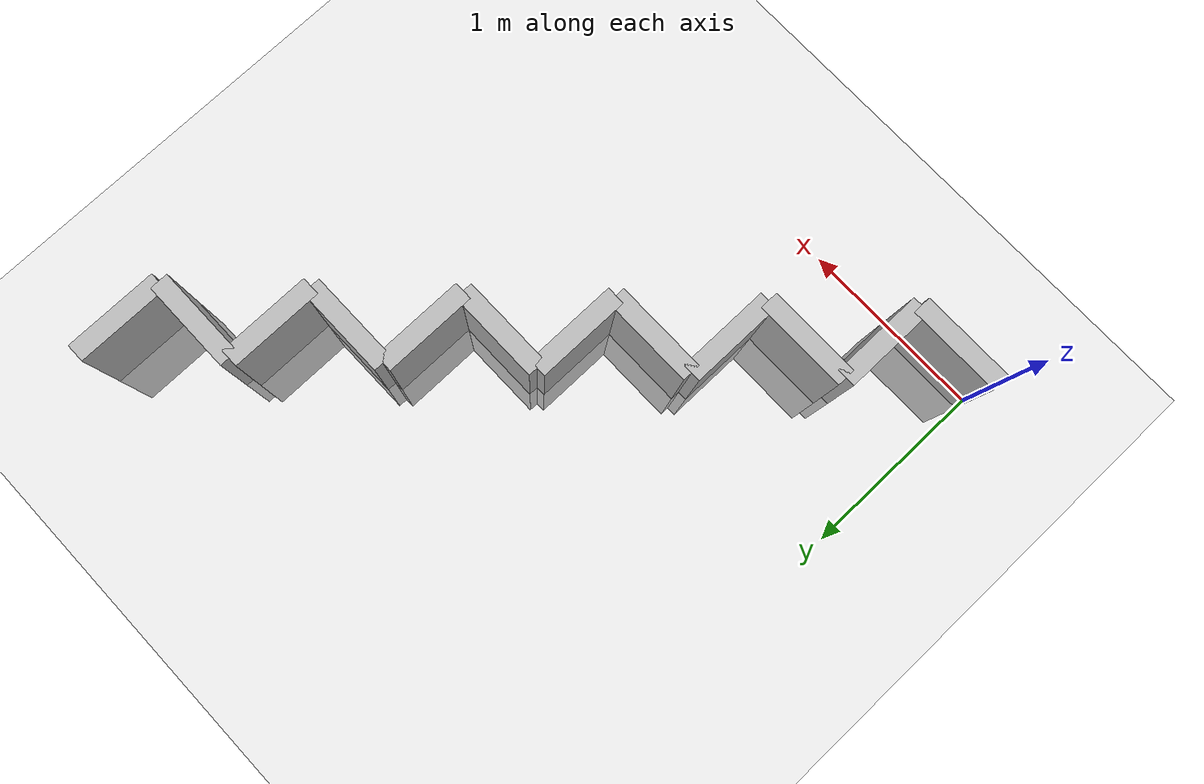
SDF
<?xml version="1.0" ?>
<sdf version="1.6">
  <world name="default">
    <include>
      <uri>model://ground_plane</uri>
    </include>
    <include>
      <uri>model://sun</uri>
    </include>

    <model name="wall_0">
      <static>true</static>
      <link name="link">
        <pose>0.25 0 0 0 0 0</pose>
        <collision name="collision">
          <geometry>
            <box>
              <size>0.5 0.1 1.0</size>
            </box>
          </geometry>
        </collision>
        <visual name="visual">
          <geometry>
            <box>
              <size>0.5 0.1 1.0</size>
            </box>
          </geometry>
        </visual>
      </link>
    </model>

    <model name="wall_1">
      <static>true</static>
      <link name="link">
        <pose>0.5 0.25 0 0 0 1.57</pose>
        <collision name="collision">
          <geometry>
            <box>
              <size>0.5 0.1 1.0</size>
            </box>
          </geometry>
        </collision>
        <visual name="visual">
          <geometry>
            <box>
              <size>0.5 0.1 1.0</size>
            </box>
          </geometry>
        </visual>
      </link>
    </model>

    <model name="wall_2">
      <static>true</static>
      <link name="link">
        <pose>0.75 0.5 0 0 0 0</pose>
        <collision name="collision">
          <geometry>
            <box>
              <size>0.5 0.1 1.0</size>
            </box>
          </geometry>
        </collision>
        <visual name="visual">
          <geometry>
            <box>
              <size>0.5 0.1 1.0</size>
            </box>
          </geometry>
        </visual>
      </link>
    </model>

    <model name="wall_3">
      <static>true</static>
      <link name="link">
        <pose>1.0 0.75 0 0 0 1.57</pose>
        <collision name="collision">
          <geometry>
            <box>
              <size>0.5 0.1 1.0</size>
            </box>
          </geometry>
        </collision>
        <visual name="visual">
          <geometry>
            <box>
              <size>0.5 0.1 1.0</size>
            </box>
          </geometry>
        </visual>
      </link>
    </model>

    <model name="wall_4">
      <static>true</static>
      <link name="link">
        <pose>1.25 1.0 0 0 0 0</pose>
        <collision name="collision">
          <geometry>
            <box>
              <size>0.5 0.1 1.0</size>
            </box>
          </geometry>
        </collision>
        <visual name="visual">
          <geometry>
            <box>
              <size>0.5 0.1 1.0</size>
            </box>
          </geometry>
        </visual>
      </link>
    </model>

    <model name="wall_5">
      <static>true</static>
      <link name="link">
        <pose>1.5 1.25 0 0 0 1.57</pose>
        <collision name="collision">
          <geometry>
            <box>
              <size>0.5 0.1 1.0</size>
            </box>
          </geometry>
        </collision>
        <visual name="visual">
          <geometry>
            <box>
              <size>0.5 0.1 1.0</size>
            </box>
          </geometry>
        </visual>
      </link>
    </model>

    <model name="wall_6">
      <static>true</static>
      <link name="link">
        <pose>1.75 1.5 0 0 0 0</pose>
        <collision name="collision">
          <geometry>
            <box>
              <size>0.5 0.1 1.0</size>
            </box>
          </geometry>
        </collision>
        <visual name="visual">
          <geometry>
            <box>
              <size>0.5 0.1 1.0</size>
            </box>
          </geometry>
        </visual>
      </link>
    </model>

    <model name="wall_7">
      <static>true</static>
      <link name="link">
        <pose>2.0 1.75 0 0 0 1.57</pose>
        <collision name="collision">
          <geometry>
            <box>
              <size>0.5 0.1 1.0</size>
            </box>
          </geometry>
        </collision>
        <visual name="visual">
          <geometry>
            <box>
              <size>0.5 0.1 1.0</size>
            </box>
          </geometry>
        </visual>
      </link>
    </model>

    <model name="wall_8">
      <static>true</static>
      <link name="link">
        <pose>2.25 2.0 0 0 0 0</pose>
        <collision name="collision">
          <geometry>
            <box>
              <size>0.5 0.1 1.0</size>
            </box>
          </geometry>
        </collision>
        <visual name="visual">
          <geometry>
            <box>
              <size>0.5 0.1 1.0</size>
            </box>
          </geometry>
        </visual>
      </link>
    </model>

    <model name="wall_9">
      <static>true</static>
      <link name="link">
        <pose>2.5 2.25 0 0 0 1.57</pose>
        <collision name="collision">
          <geometry>
            <box>
              <size>0.5 0.1 1.0</size>
            </box>
          </geometry>
        </collision>
        <visual name="visual">
          <geometry>
            <box>
              <size>0.5 0.1 1.0</size>
            </box>
          </geometry>
        </visual>
      </link>
    </model>

    <model name="wall_10">
      <static>true</static>
      <link name="link">
        <pose>2.75 2.5 0 0 0 0</pose>
        <collision name="collision">
          <geometry>
            <box>
              <size>0.5 0.1 1.0</size>
            </box>
          </geometry>
        </collision>
        <visual name="visual">
          <geometry>
            <box>
              <size>0.5 0.1 1.0</size>
            </box>
          </geometry>
        </visual>
      </link>
    </model>

    <model name="wall_11">
      <static>true</static>
      <link name="link">
        <pose>3.0 2.75 0 0 0 1.57</pose>
        <collision name="collision">
          <geometry>
            <box>
              <size>0.5 0.1 1.0</size>
            </box>
          </geometry>
        </collision>
        <visual name="visual">
          <geometry>
            <box>
              <size>0.5 0.1 1.0</size>
            </box>
          </geometry>
        </visual>
      </link>
    </model>

  </world>
</sdf>
